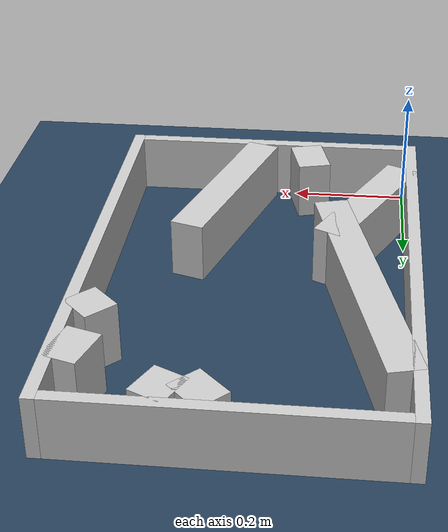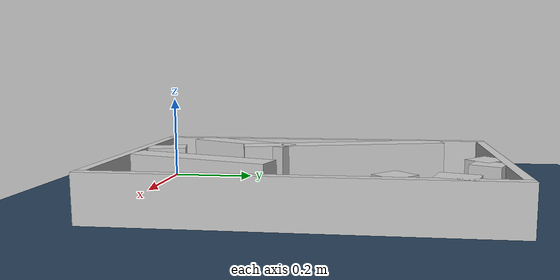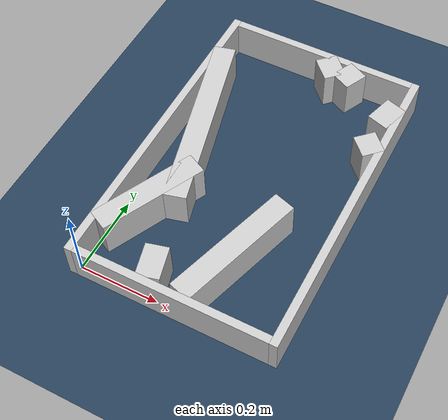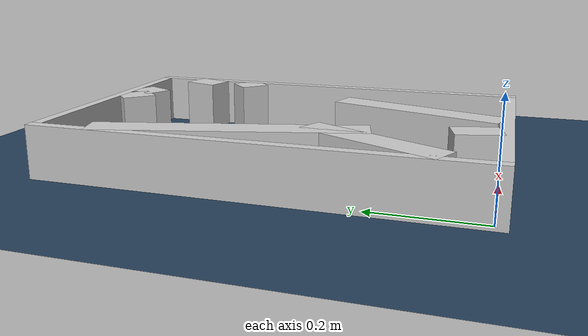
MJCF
<?xml version="1.0" ?>
<mujoco model="generated_real_template">
  <compiler angle="degree"/>
  <option timestep="0.002" integrator="implicitfast" iterations="100" cone="elliptic"/>
  <default>
    <geom density="1"/>
  </default>
  <asset>
    <texture builtin="gradient" height="3072" rgb1="0.3 0.5 0.7" rgb2="0 0 0" type="skybox" width="512"/>
    <texture builtin="checker" height="300" mark="edge" markrgb="0.8 0.8 0.8" name="groundplane" rgb1="0.2 0.3 0.4" rgb2="0.1 0.2 0.3" type="2d" width="300"/>
    <material name="groundplane" reflectance="0.2" texrepeat="5 5" texture="groundplane" texuniform="true"/>
  </asset>
  <worldbody>
    <light dir="0 0 -1" directional="true" pos="0 0 1.5"/>
    <geom name="floor" type="plane" condim="4" friction="0.5 0.005 0.001" material="groundplane" size="0 0 0.05"/>
    <body name="walls">
      <geom name="wall_boundary_left" type="box" condim="4" friction="1.0 0.005 0.0001" rgba="0.8 0.8 0.8 1" pos="-0.010000 0.387500 0.050000" euler="0 0 0.000000" size="0.010000 0.407500 0.050000"/>
      <geom name="wall_boundary_right" type="box" condim="4" friction="1.0 0.005 0.0001" rgba="0.8 0.8 0.8 1" pos="0.500000 0.387500 0.050000" euler="0 0 0.000000" size="0.010000 0.407500 0.050000"/>
      <geom name="wall_boundary_bottom" type="box" condim="4" friction="1.0 0.005 0.0001" rgba="0.8 0.8 0.8 1" pos="0.245000 -0.010000 0.050000" euler="0 0 0.000000" size="0.245000 0.010000 0.050000"/>
      <geom name="wall_boundary_top" type="box" condim="4" friction="1.0 0.005 0.0001" rgba="0.8 0.8 0.8 1" pos="0.245000 0.785000 0.050000" euler="0 0 0.000000" size="0.245000 0.010000 0.050000"/>
      <geom name="wall_inner_1_1" type="box" condim="4" friction="1.0 0.005 0.0001" rgba="0.8 0.8 0.8 1" pos="0.066542 0.199421 0.050000" euler="0 0 63.775069" size="0.137984 0.028500 0.050000"/>
      <geom name="wall_inner_1_2" type="box" condim="4" friction="1.0 0.005 0.0001" rgba="0.8 0.8 0.8 1" pos="0.336030 0.746493 0.050000" euler="0 0 63.775069" size="0.031778 0.028500 0.050000"/>
      <geom name="wall_inner_2_1" type="box" condim="4" friction="1.0 0.005 0.0001" rgba="0.8 0.8 0.8 1" pos="0.468402 0.561578 0.050000" euler="0 0 134.551462" size="0.030343 0.028500 0.050000"/>
      <geom name="wall_inner_2_2" type="box" condim="4" friction="1.0 0.005 0.0001" rgba="0.8 0.8 0.8 1" pos="0.281868 0.751056 0.050000" euler="0 0 134.551462" size="0.033600 0.028500 0.050000"/>
      <geom name="wall_inner_3_1" type="box" condim="4" friction="1.0 0.005 0.0001" rgba="0.8 0.8 0.8 1" pos="0.173215 0.040924 0.050000" euler="0 0 104.385417" size="0.042249 0.028500 0.050000"/>
      <geom name="wall_inner_3_2" type="box" condim="4" friction="1.0 0.005 0.0001" rgba="0.8 0.8 0.8 1" pos="0.068313 0.449921 0.050000" euler="0 0 104.385417" size="0.244345 0.028500 0.050000"/>
      <geom name="wall_inner_4_1" type="box" condim="4" friction="1.0 0.005 0.0001" rgba="0.8 0.8 0.8 1" pos="0.312508 0.159335 0.050000" euler="0 0 72.705300" size="0.166880 0.028500 0.050000"/>
      <geom name="wall_inner_4_2" type="box" condim="4" friction="1.0 0.005 0.0001" rgba="0.8 0.8 0.8 1" pos="0.471450 0.669806 0.050000" euler="0 0 72.705300" size="0.038137 0.028500 0.050000"/>
    </body>
  </worldbody>
</mujoco>
